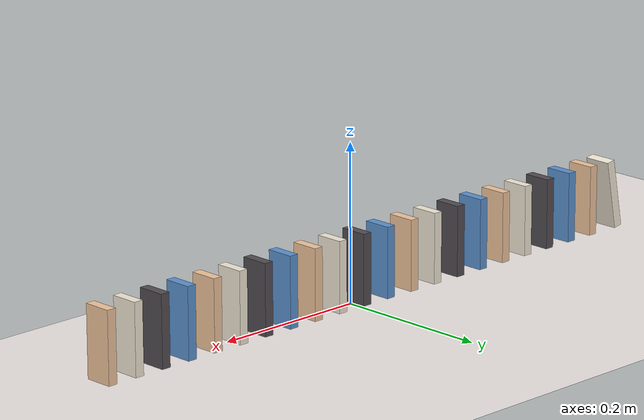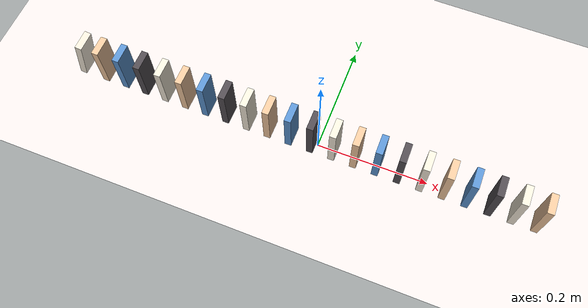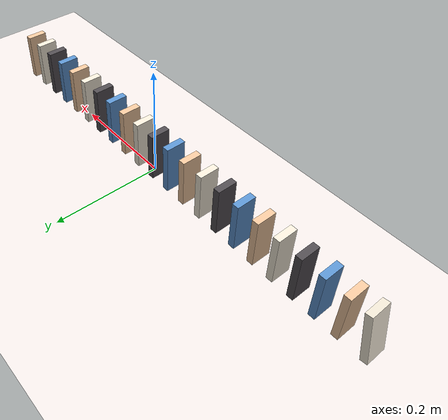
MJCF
<mujoco model="dominoes">
  <compiler angle="radian" coordinate="local" autolimits="true"/>
  <option timestep="0.001" gravity="0 0 -9.81" integrator="implicitfast"
          impratio="3" cone="elliptic"/>

  <visual>
    <headlight diffuse="0 0 0" ambient="0.50 0.48 0.55" specular="0 0 0"/>
    <rgba haze="0.94 0.91 0.90 1"/>
    <global azimuth="120" elevation="-15" offwidth="1920" offheight="1080" fovy="36"/>
    <quality shadowsize="8192" offsamples="8"/>
    <map shadowclip="6" shadowscale="0.7"/>
  </visual>

  <asset>
    <texture type="skybox" builtin="flat"
             rgb1="0.74 0.68 0.86" rgb2="0.74 0.68 0.86"
             width="512" height="512" mark="none" markrgb="0 0 0"/>
    <material name="floor_mat" rgba="0.94 0.91 0.90 1" specular="0" shininess="0"/>
    <material name="dom_cream" rgba="0.96 0.92 0.85 1" specular="0.15" shininess="0.2"/>
    <material name="dom_peach" rgba="0.95 0.78 0.62 1" specular="0.15" shininess="0.2"/>
    <material name="dom_blue"  rgba="0.36 0.58 0.82 1" specular="0.25" shininess="0.3"/>
    <material name="dom_dark"  rgba="0.32 0.30 0.32 1" specular="0.25" shininess="0.3"/>
  </asset>

  <default>
    <geom friction="0.7 0.04 0.001" solref="0.005 1" solimp="0.95 0.99 0.001"/>
  </default>

  <worldbody>
    <light pos="0 0 12" dir="-0.30 0.55 -1" directional="true" castshadow="true"
           diffuse="0.85 0.82 0.78" specular="0.15 0.15 0.15"/>
    <light pos="0 0 8" dir="0.40 -0.30 -1" directional="true" castshadow="false"
           diffuse="0.28 0.28 0.34" specular="0 0 0"/>

    <geom name="floor" type="plane" size="40 40 0.1" material="floor_mat"/>

    <body name="d0" pos="-0.4500 0 0.0450" quat="0.99619 0 0.08716 0">
      <joint type="free"/>
      <geom type="box" size="0.006 0.018 0.045" mass="0.025" material="dom_cream"/>
    </body>
    <body name="d1" pos="-0.4100 0 0.0450">
      <joint type="free"/>
      <geom type="box" size="0.006 0.018 0.045" mass="0.025" material="dom_peach"/>
    </body>
    <body name="d2" pos="-0.3700 0 0.0450">
      <joint type="free"/>
      <geom type="box" size="0.006 0.018 0.045" mass="0.025" material="dom_blue"/>
    </body>
    <body name="d3" pos="-0.3300 0 0.0450">
      <joint type="free"/>
      <geom type="box" size="0.006 0.018 0.045" mass="0.025" material="dom_dark"/>
    </body>
    <body name="d4" pos="-0.2900 0 0.0450">
      <joint type="free"/>
      <geom type="box" size="0.006 0.018 0.045" mass="0.025" material="dom_cream"/>
    </body>
    <body name="d5" pos="-0.2500 0 0.0450">
      <joint type="free"/>
      <geom type="box" size="0.006 0.018 0.045" mass="0.025" material="dom_peach"/>
    </body>
    <body name="d6" pos="-0.2100 0 0.0450">
      <joint type="free"/>
      <geom type="box" size="0.006 0.018 0.045" mass="0.025" material="dom_blue"/>
    </body>
    <body name="d7" pos="-0.1700 0 0.0450">
      <joint type="free"/>
      <geom type="box" size="0.006 0.018 0.045" mass="0.025" material="dom_dark"/>
    </body>
    <body name="d8" pos="-0.1300 0 0.0450">
      <joint type="free"/>
      <geom type="box" size="0.006 0.018 0.045" mass="0.025" material="dom_cream"/>
    </body>
    <body name="d9" pos="-0.0900 0 0.0450">
      <joint type="free"/>
      <geom type="box" size="0.006 0.018 0.045" mass="0.025" material="dom_peach"/>
    </body>
    <body name="d10" pos="-0.0500 0 0.0450">
      <joint type="free"/>
      <geom type="box" size="0.006 0.018 0.045" mass="0.025" material="dom_blue"/>
    </body>
    <body name="d11" pos="-0.0100 0 0.0450">
      <joint type="free"/>
      <geom type="box" size="0.006 0.018 0.045" mass="0.025" material="dom_dark"/>
    </body>
    <body name="d12" pos="0.0300 0 0.0450">
      <joint type="free"/>
      <geom type="box" size="0.006 0.018 0.045" mass="0.025" material="dom_cream"/>
    </body>
    <body name="d13" pos="0.0700 0 0.0450">
      <joint type="free"/>
      <geom type="box" size="0.006 0.018 0.045" mass="0.025" material="dom_peach"/>
    </body>
    <body name="d14" pos="0.1100 0 0.0450">
      <joint type="free"/>
      <geom type="box" size="0.006 0.018 0.045" mass="0.025" material="dom_blue"/>
    </body>
    <body name="d15" pos="0.1500 0 0.0450">
      <joint type="free"/>
      <geom type="box" size="0.006 0.018 0.045" mass="0.025" material="dom_dark"/>
    </body>
    <body name="d16" pos="0.1900 0 0.0450">
      <joint type="free"/>
      <geom type="box" size="0.006 0.018 0.045" mass="0.025" material="dom_cream"/>
    </body>
    <body name="d17" pos="0.2300 0 0.0450">
      <joint type="free"/>
      <geom type="box" size="0.006 0.018 0.045" mass="0.025" material="dom_peach"/>
    </body>
    <body name="d18" pos="0.2700 0 0.0450">
      <joint type="free"/>
      <geom type="box" size="0.006 0.018 0.045" mass="0.025" material="dom_blue"/>
    </body>
    <body name="d19" pos="0.3100 0 0.0450">
      <joint type="free"/>
      <geom type="box" size="0.006 0.018 0.045" mass="0.025" material="dom_dark"/>
    </body>
    <body name="d20" pos="0.3500 0 0.0450">
      <joint type="free"/>
      <geom type="box" size="0.006 0.018 0.045" mass="0.025" material="dom_cream"/>
    </body>
    <body name="d21" pos="0.3900 0 0.0450">
      <joint type="free"/>
      <geom type="box" size="0.006 0.018 0.045" mass="0.025" material="dom_peach"/>
    </body>

    <!-- Camera: a low 3/4 view along the line of dominoes -->
    <camera name="cam" pos="-0.95 -0.85 0.30" fovy="42"
            xyaxes="0.65 -0.76 0   0.16 0.14 0.978"/>
  </worldbody>
</mujoco>
